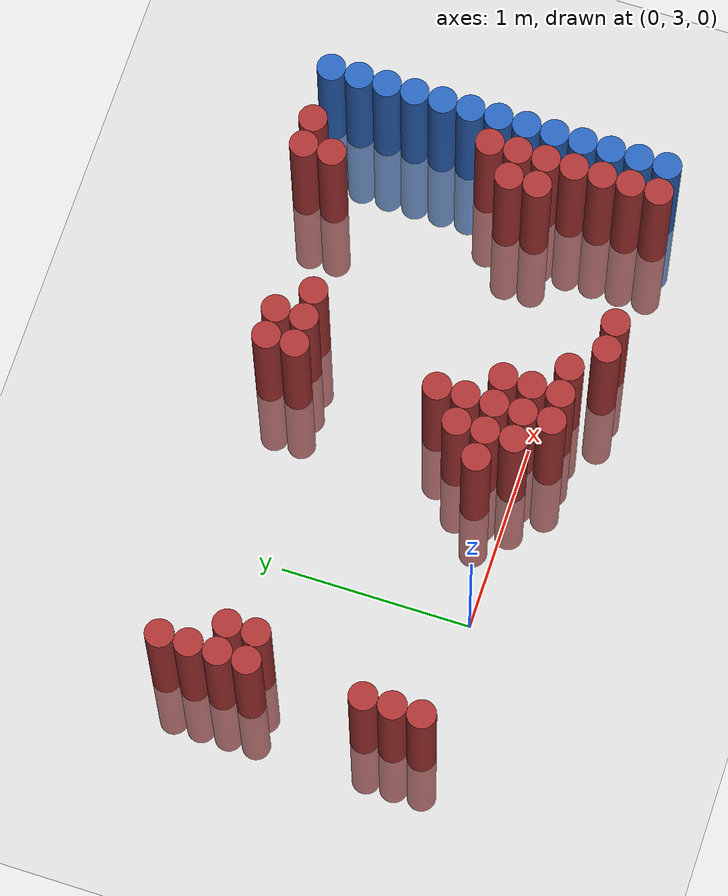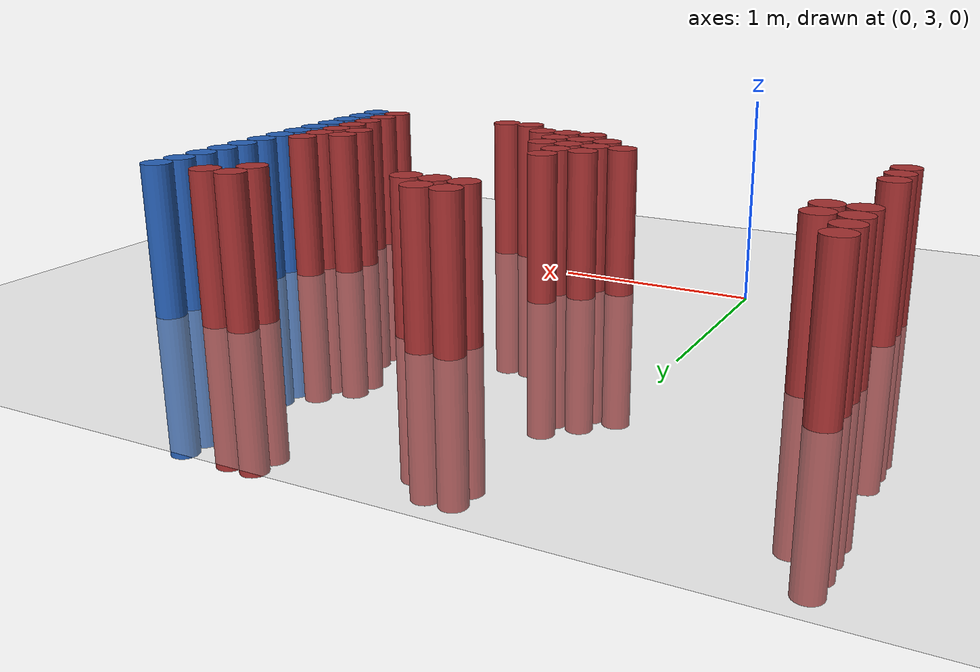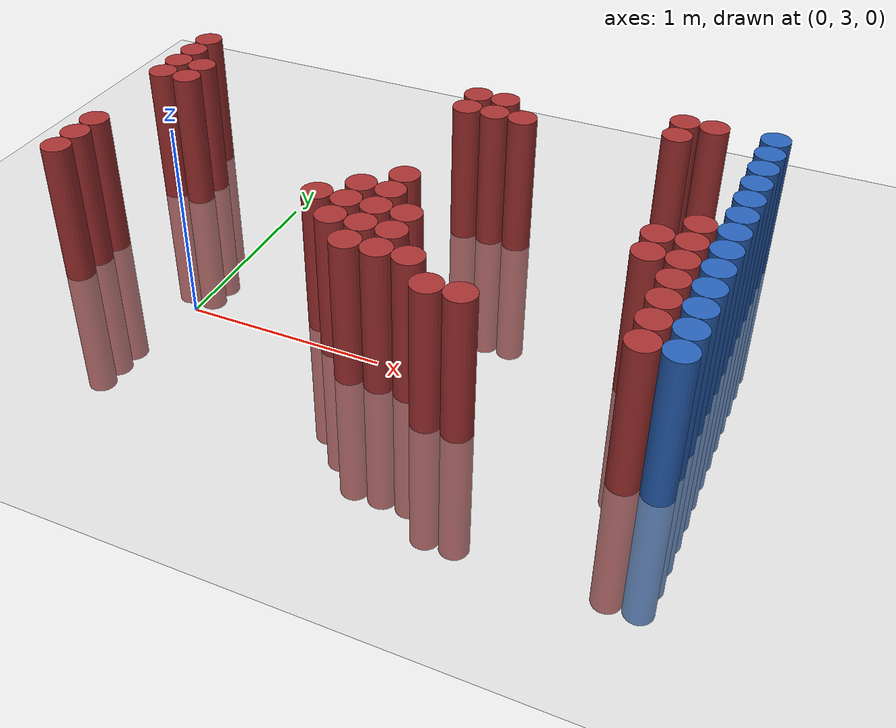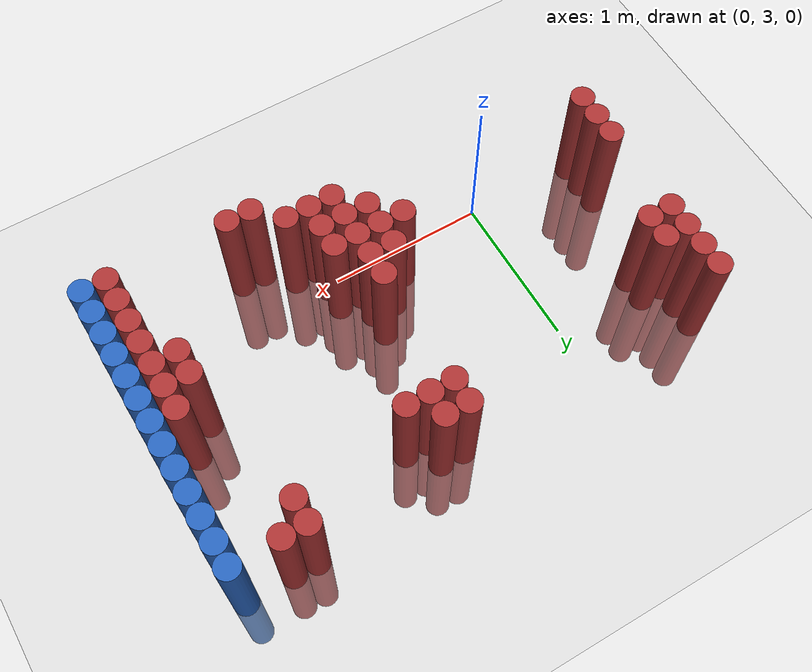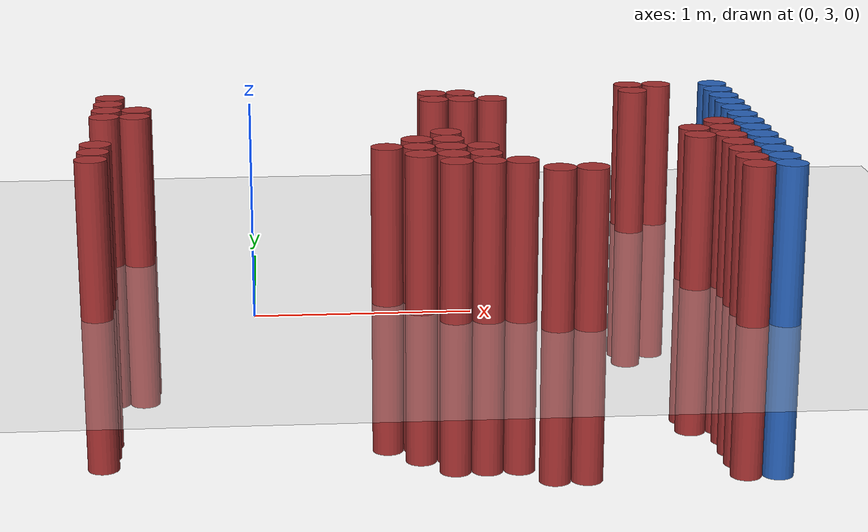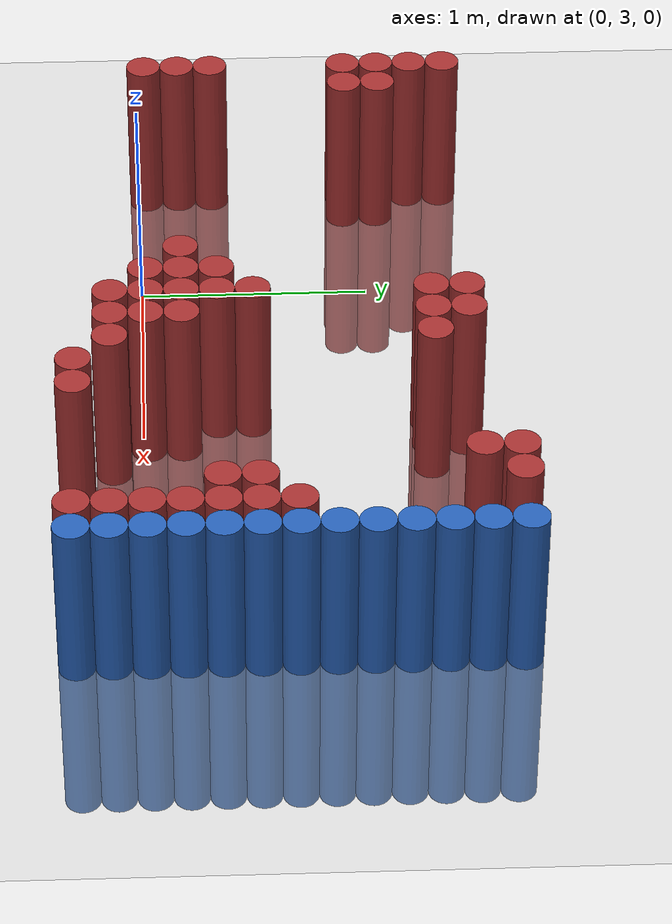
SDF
<sdf version="1.6">
 <world name="default">
  <model name="ground_plane">
   <static>1</static>
   <link name="link">
    <collision name="collision">
     <geometry><plane><normal>0 0 1</normal><size>100 100</size></plane></geometry>
     <surface><friction><ode><mu>100</mu><mu2>50</mu2></ode></friction></surface>
    </collision>
    <visual name="visual">
     <cast_shadows>0</cast_shadows>
     <geometry><plane><normal>0 0 1</normal><size>100 100</size></plane></geometry>
     <material>
      <script><uri>file://media/materials/scripts/gazebo.material</uri><name>Gazebo/Grey</name></script>
     </material>
    </visual>
   </link>
  </model>
  <model name="unit_cylinder_156">
   <static>1</static>
   <pose>-0.725000 3.025000 0.000000 0.000000 0.000000 0.000000</pose>
   <link name="link">
    <inertial>
     <mass>1</mass>
     <inertia><ixx>0.145833</ixx><ixy>0</ixy><ixz>0</ixz><iyy>0.145833</iyy><iyz>0</iyz><izz>0.125</izz></inertia>
    </inertial>
    <collision name="collision">
     <geometry><cylinder><radius>0.075000</radius><length>1.5</length></cylinder></geometry>
    </collision>
    <visual name="visual">
     <geometry><cylinder><radius>0.075000</radius><length>1.5</length></cylinder></geometry>
     <material>
      <ambient>0.648000 0.192000 0.192000 1</ambient>
      <diffuse>0.648000 0.192000 0.192000 1</diffuse>
     </material>
     <material>
      <script><name>Gazebo/Grey</name><uri>file://media/materials/scripts/gazebo.material</uri></script>
     </material>
    </visual>
   </link>
  </model>
  <model name="unit_cylinder_157">
   <static>1</static>
   <pose>-0.725000 3.175000 0.000000 0.000000 0.000000 0.000000</pose>
   <link name="link">
    <inertial>
     <mass>1</mass>
     <inertia><ixx>0.145833</ixx><ixy>0</ixy><ixz>0</ixz><iyy>0.145833</iyy><iyz>0</iyz><izz>0.125</izz></inertia>
    </inertial>
    <collision name="collision">
     <geometry><cylinder><radius>0.075000</radius><length>1.5</length></cylinder></geometry>
    </collision>
    <visual name="visual">
     <geometry><cylinder><radius>0.075000</radius><length>1.5</length></cylinder></geometry>
     <material>
      <ambient>0.648000 0.192000 0.192000 1</ambient>
      <diffuse>0.648000 0.192000 0.192000 1</diffuse>
     </material>
     <material>
      <script><name>Gazebo/Grey</name><uri>file://media/materials/scripts/gazebo.material</uri></script>
     </material>
    </visual>
   </link>
  </model>
  <model name="unit_cylinder_158">
   <static>1</static>
   <pose>-0.725000 3.325000 0.000000 0.000000 0.000000 0.000000</pose>
   <link name="link">
    <inertial>
     <mass>1</mass>
     <inertia><ixx>0.145833</ixx><ixy>0</ixy><ixz>0</ixz><iyy>0.145833</iyy><iyz>0</iyz><izz>0.125</izz></inertia>
    </inertial>
    <collision name="collision">
     <geometry><cylinder><radius>0.075000</radius><length>1.5</length></cylinder></geometry>
    </collision>
    <visual name="visual">
     <geometry><cylinder><radius>0.075000</radius><length>1.5</length></cylinder></geometry>
     <material>
      <ambient>0.648000 0.192000 0.192000 1</ambient>
      <diffuse>0.648000 0.192000 0.192000 1</diffuse>
     </material>
     <material>
      <script><name>Gazebo/Grey</name><uri>file://media/materials/scripts/gazebo.material</uri></script>
     </material>
    </visual>
   </link>
  </model>
  <model name="unit_cylinder_159">
   <static>1</static>
   <pose>-0.725000 3.925000 0.000000 0.000000 0.000000 0.000000</pose>
   <link name="link">
    <inertial>
     <mass>1</mass>
     <inertia><ixx>0.145833</ixx><ixy>0</ixy><ixz>0</ixz><iyy>0.145833</iyy><iyz>0</iyz><izz>0.125</izz></inertia>
    </inertial>
    <collision name="collision">
     <geometry><cylinder><radius>0.075000</radius><length>1.5</length></cylinder></geometry>
    </collision>
    <visual name="visual">
     <geometry><cylinder><radius>0.075000</radius><length>1.5</length></cylinder></geometry>
     <material>
      <ambient>0.648000 0.192000 0.192000 1</ambient>
      <diffuse>0.648000 0.192000 0.192000 1</diffuse>
     </material>
     <material>
      <script><name>Gazebo/Grey</name><uri>file://media/materials/scripts/gazebo.material</uri></script>
     </material>
    </visual>
   </link>
  </model>
  <model name="unit_cylinder_160">
   <static>1</static>
   <pose>-0.725000 4.075000 0.000000 0.000000 0.000000 0.000000</pose>
   <link name="link">
    <inertial>
     <mass>1</mass>
     <inertia><ixx>0.145833</ixx><ixy>0</ixy><ixz>0</ixz><iyy>0.145833</iyy><iyz>0</iyz><izz>0.125</izz></inertia>
    </inertial>
    <collision name="collision">
     <geometry><cylinder><radius>0.075000</radius><length>1.5</length></cylinder></geometry>
    </collision>
    <visual name="visual">
     <geometry><cylinder><radius>0.075000</radius><length>1.5</length></cylinder></geometry>
     <material>
      <ambient>0.648000 0.192000 0.192000 1</ambient>
      <diffuse>0.648000 0.192000 0.192000 1</diffuse>
     </material>
     <material>
      <script><name>Gazebo/Grey</name><uri>file://media/materials/scripts/gazebo.material</uri></script>
     </material>
    </visual>
   </link>
  </model>
  <model name="unit_cylinder_161">
   <static>1</static>
   <pose>-0.725000 4.225000 0.000000 0.000000 0.000000 0.000000</pose>
   <link name="link">
    <inertial>
     <mass>1</mass>
     <inertia><ixx>0.145833</ixx><ixy>0</ixy><ixz>0</ixz><iyy>0.145833</iyy><iyz>0</iyz><izz>0.125</izz></inertia>
    </inertial>
    <collision name="collision">
     <geometry><cylinder><radius>0.075000</radius><length>1.5</length></cylinder></geometry>
    </collision>
    <visual name="visual">
     <geometry><cylinder><radius>0.075000</radius><length>1.5</length></cylinder></geometry>
     <material>
      <ambient>0.648000 0.192000 0.192000 1</ambient>
      <diffuse>0.648000 0.192000 0.192000 1</diffuse>
     </material>
     <material>
      <script><name>Gazebo/Grey</name><uri>file://media/materials/scripts/gazebo.material</uri></script>
     </material>
    </visual>
   </link>
  </model>
  <model name="unit_cylinder_162">
   <static>1</static>
   <pose>-0.725000 4.375000 0.000000 0.000000 0.000000 0.000000</pose>
   <link name="link">
    <inertial>
     <mass>1</mass>
     <inertia><ixx>0.145833</ixx><ixy>0</ixy><ixz>0</ixz><iyy>0.145833</iyy><iyz>0</iyz><izz>0.125</izz></inertia>
    </inertial>
    <collision name="collision">
     <geometry><cylinder><radius>0.075000</radius><length>1.5</length></cylinder></geometry>
    </collision>
    <visual name="visual">
     <geometry><cylinder><radius>0.075000</radius><length>1.5</length></cylinder></geometry>
     <material>
      <ambient>0.648000 0.192000 0.192000 1</ambient>
      <diffuse>0.648000 0.192000 0.192000 1</diffuse>
     </material>
     <material>
      <script><name>Gazebo/Grey</name><uri>file://media/materials/scripts/gazebo.material</uri></script>
     </material>
    </visual>
   </link>
  </model>
  <model name="unit_cylinder_165">
   <static>1</static>
   <pose>-0.575000 3.925000 0.000000 0.000000 0.000000 0.000000</pose>
   <link name="link">
    <inertial>
     <mass>1</mass>
     <inertia><ixx>0.145833</ixx><ixy>0</ixy><ixz>0</ixz><iyy>0.145833</iyy><iyz>0</iyz><izz>0.125</izz></inertia>
    </inertial>
    <collision name="collision">
     <geometry><cylinder><radius>0.075000</radius><length>1.5</length></cylinder></geometry>
    </collision>
    <visual name="visual">
     <geometry><cylinder><radius>0.075000</radius><length>1.5</length></cylinder></geometry>
     <material>
      <ambient>0.648000 0.192000 0.192000 1</ambient>
      <diffuse>0.648000 0.192000 0.192000 1</diffuse>
     </material>
     <material>
      <script><name>Gazebo/Grey</name><uri>file://media/materials/scripts/gazebo.material</uri></script>
     </material>
    </visual>
   </link>
  </model>
  <model name="unit_cylinder_166">
   <static>1</static>
   <pose>-0.575000 4.075000 0.000000 0.000000 0.000000 0.000000</pose>
   <link name="link">
    <inertial>
     <mass>1</mass>
     <inertia><ixx>0.145833</ixx><ixy>0</ixy><ixz>0</ixz><iyy>0.145833</iyy><iyz>0</iyz><izz>0.125</izz></inertia>
    </inertial>
    <collision name="collision">
     <geometry><cylinder><radius>0.075000</radius><length>1.5</length></cylinder></geometry>
    </collision>
    <visual name="visual">
     <geometry><cylinder><radius>0.075000</radius><length>1.5</length></cylinder></geometry>
     <material>
      <ambient>0.648000 0.192000 0.192000 1</ambient>
      <diffuse>0.648000 0.192000 0.192000 1</diffuse>
     </material>
     <material>
      <script><name>Gazebo/Grey</name><uri>file://media/materials/scripts/gazebo.material</uri></script>
     </material>
    </visual>
   </link>
  </model>
  <model name="unit_cylinder_171">
   <static>1</static>
   <pose>0.625000 3.175000 0.000000 0.000000 0.000000 0.000000</pose>
   <link name="link">
    <inertial>
     <mass>1</mass>
     <inertia><ixx>0.145833</ixx><ixy>0</ixy><ixz>0</ixz><iyy>0.145833</iyy><iyz>0</iyz><izz>0.125</izz></inertia>
    </inertial>
    <collision name="collision">
     <geometry><cylinder><radius>0.075000</radius><length>1.5</length></cylinder></geometry>
    </collision>
    <visual name="visual">
     <geometry><cylinder><radius>0.075000</radius><length>1.5</length></cylinder></geometry>
     <material>
      <ambient>0.648000 0.192000 0.192000 1</ambient>
      <diffuse>0.648000 0.192000 0.192000 1</diffuse>
     </material>
     <material>
      <script><name>Gazebo/Grey</name><uri>file://media/materials/scripts/gazebo.material</uri></script>
     </material>
    </visual>
   </link>
  </model>
  <model name="unit_cylinder_174">
   <static>1</static>
   <pose>0.775000 3.025000 0.000000 0.000000 0.000000 0.000000</pose>
   <link name="link">
    <inertial>
     <mass>1</mass>
     <inertia><ixx>0.145833</ixx><ixy>0</ixy><ixz>0</ixz><iyy>0.145833</iyy><iyz>0</iyz><izz>0.125</izz></inertia>
    </inertial>
    <collision name="collision">
     <geometry><cylinder><radius>0.075000</radius><length>1.5</length></cylinder></geometry>
    </collision>
    <visual name="visual">
     <geometry><cylinder><radius>0.075000</radius><length>1.5</length></cylinder></geometry>
     <material>
      <ambient>0.648000 0.192000 0.192000 1</ambient>
      <diffuse>0.648000 0.192000 0.192000 1</diffuse>
     </material>
     <material>
      <script><name>Gazebo/Grey</name><uri>file://media/materials/scripts/gazebo.material</uri></script>
     </material>
    </visual>
   </link>
  </model>
  <model name="unit_cylinder_175">
   <static>1</static>
   <pose>0.775000 3.175000 0.000000 0.000000 0.000000 0.000000</pose>
   <link name="link">
    <inertial>
     <mass>1</mass>
     <inertia><ixx>0.145833</ixx><ixy>0</ixy><ixz>0</ixz><iyy>0.145833</iyy><iyz>0</iyz><izz>0.125</izz></inertia>
    </inertial>
    <collision name="collision">
     <geometry><cylinder><radius>0.075000</radius><length>1.5</length></cylinder></geometry>
    </collision>
    <visual name="visual">
     <geometry><cylinder><radius>0.075000</radius><length>1.5</length></cylinder></geometry>
     <material>
      <ambient>0.648000 0.192000 0.192000 1</ambient>
      <diffuse>0.648000 0.192000 0.192000 1</diffuse>
     </material>
     <material>
      <script><name>Gazebo/Grey</name><uri>file://media/materials/scripts/gazebo.material</uri></script>
     </material>
    </visual>
   </link>
  </model>
  <model name="unit_cylinder_176">
   <static>1</static>
   <pose>0.775000 3.325000 0.000000 0.000000 0.000000 0.000000</pose>
   <link name="link">
    <inertial>
     <mass>1</mass>
     <inertia><ixx>0.145833</ixx><ixy>0</ixy><ixz>0</ixz><iyy>0.145833</iyy><iyz>0</iyz><izz>0.125</izz></inertia>
    </inertial>
    <collision name="collision">
     <geometry><cylinder><radius>0.075000</radius><length>1.5</length></cylinder></geometry>
    </collision>
    <visual name="visual">
     <geometry><cylinder><radius>0.075000</radius><length>1.5</length></cylinder></geometry>
     <material>
      <ambient>0.648000 0.192000 0.192000 1</ambient>
      <diffuse>0.648000 0.192000 0.192000 1</diffuse>
     </material>
     <material>
      <script><name>Gazebo/Grey</name><uri>file://media/materials/scripts/gazebo.material</uri></script>
     </material>
    </visual>
   </link>
  </model>
  <model name="unit_cylinder_179">
   <static>1</static>
   <pose>0.925000 2.875000 0.000000 0.000000 0.000000 0.000000</pose>
   <link name="link">
    <inertial>
     <mass>1</mass>
     <inertia><ixx>0.145833</ixx><ixy>0</ixy><ixz>0</ixz><iyy>0.145833</iyy><iyz>0</iyz><izz>0.125</izz></inertia>
    </inertial>
    <collision name="collision">
     <geometry><cylinder><radius>0.075000</radius><length>1.5</length></cylinder></geometry>
    </collision>
    <visual name="visual">
     <geometry><cylinder><radius>0.075000</radius><length>1.5</length></cylinder></geometry>
     <material>
      <ambient>0.648000 0.192000 0.192000 1</ambient>
      <diffuse>0.648000 0.192000 0.192000 1</diffuse>
     </material>
     <material>
      <script><name>Gazebo/Grey</name><uri>file://media/materials/scripts/gazebo.material</uri></script>
     </material>
    </visual>
   </link>
  </model>
  <model name="unit_cylinder_180">
   <static>1</static>
   <pose>0.925000 3.025000 0.000000 0.000000 0.000000 0.000000</pose>
   <link name="link">
    <inertial>
     <mass>1</mass>
     <inertia><ixx>0.145833</ixx><ixy>0</ixy><ixz>0</ixz><iyy>0.145833</iyy><iyz>0</iyz><izz>0.125</izz></inertia>
    </inertial>
    <collision name="collision">
     <geometry><cylinder><radius>0.075000</radius><length>1.5</length></cylinder></geometry>
    </collision>
    <visual name="visual">
     <geometry><cylinder><radius>0.075000</radius><length>1.5</length></cylinder></geometry>
     <material>
      <ambient>0.648000 0.192000 0.192000 1</ambient>
      <diffuse>0.648000 0.192000 0.192000 1</diffuse>
     </material>
     <material>
      <script><name>Gazebo/Grey</name><uri>file://media/materials/scripts/gazebo.material</uri></script>
     </material>
    </visual>
   </link>
  </model>
  <model name="unit_cylinder_181">
   <static>1</static>
   <pose>0.925000 3.175000 0.000000 0.000000 0.000000 0.000000</pose>
   <link name="link">
    <inertial>
     <mass>1</mass>
     <inertia><ixx>0.145833</ixx><ixy>0</ixy><ixz>0</ixz><iyy>0.145833</iyy><iyz>0</iyz><izz>0.125</izz></inertia>
    </inertial>
    <collision name="collision">
     <geometry><cylinder><radius>0.075000</radius><length>1.5</length></cylinder></geometry>
    </collision>
    <visual name="visual">
     <geometry><cylinder><radius>0.075000</radius><length>1.5</length></cylinder></geometry>
     <material>
      <ambient>0.648000 0.192000 0.192000 1</ambient>
      <diffuse>0.648000 0.192000 0.192000 1</diffuse>
     </material>
     <material>
      <script><name>Gazebo/Grey</name><uri>file://media/materials/scripts/gazebo.material</uri></script>
     </material>
    </visual>
   </link>
  </model>
  <model name="unit_cylinder_182">
   <static>1</static>
   <pose>0.925000 3.325000 0.000000 0.000000 0.000000 0.000000</pose>
   <link name="link">
    <inertial>
     <mass>1</mass>
     <inertia><ixx>0.145833</ixx><ixy>0</ixy><ixz>0</ixz><iyy>0.145833</iyy><iyz>0</iyz><izz>0.125</izz></inertia>
    </inertial>
    <collision name="collision">
     <geometry><cylinder><radius>0.075000</radius><length>1.5</length></cylinder></geometry>
    </collision>
    <visual name="visual">
     <geometry><cylinder><radius>0.075000</radius><length>1.5</length></cylinder></geometry>
     <material>
      <ambient>0.648000 0.192000 0.192000 1</ambient>
      <diffuse>0.648000 0.192000 0.192000 1</diffuse>
     </material>
     <material>
      <script><name>Gazebo/Grey</name><uri>file://media/materials/scripts/gazebo.material</uri></script>
     </material>
    </visual>
   </link>
  </model>
  <model name="unit_cylinder_183">
   <static>1</static>
   <pose>0.925000 3.475000 0.000000 0.000000 0.000000 0.000000</pose>
   <link name="link">
    <inertial>
     <mass>1</mass>
     <inertia><ixx>0.145833</ixx><ixy>0</ixy><ixz>0</ixz><iyy>0.145833</iyy><iyz>0</iyz><izz>0.125</izz></inertia>
    </inertial>
    <collision name="collision">
     <geometry><cylinder><radius>0.075000</radius><length>1.5</length></cylinder></geometry>
    </collision>
    <visual name="visual">
     <geometry><cylinder><radius>0.075000</radius><length>1.5</length></cylinder></geometry>
     <material>
      <ambient>0.648000 0.192000 0.192000 1</ambient>
      <diffuse>0.648000 0.192000 0.192000 1</diffuse>
     </material>
     <material>
      <script><name>Gazebo/Grey</name><uri>file://media/materials/scripts/gazebo.material</uri></script>
     </material>
    </visual>
   </link>
  </model>
  <model name="unit_cylinder_184">
   <static>1</static>
   <pose>0.925000 4.225000 0.000000 0.000000 0.000000 0.000000</pose>
   <link name="link">
    <inertial>
     <mass>1</mass>
     <inertia><ixx>0.145833</ixx><ixy>0</ixy><ixz>0</ixz><iyy>0.145833</iyy><iyz>0</iyz><izz>0.125</izz></inertia>
    </inertial>
    <collision name="collision">
     <geometry><cylinder><radius>0.075000</radius><length>1.5</length></cylinder></geometry>
    </collision>
    <visual name="visual">
     <geometry><cylinder><radius>0.075000</radius><length>1.5</length></cylinder></geometry>
     <material>
      <ambient>0.648000 0.192000 0.192000 1</ambient>
      <diffuse>0.648000 0.192000 0.192000 1</diffuse>
     </material>
     <material>
      <script><name>Gazebo/Grey</name><uri>file://media/materials/scripts/gazebo.material</uri></script>
     </material>
    </visual>
   </link>
  </model>
  <model name="unit_cylinder_185">
   <static>1</static>
   <pose>0.925000 4.375000 0.000000 0.000000 0.000000 0.000000</pose>
   <link name="link">
    <inertial>
     <mass>1</mass>
     <inertia><ixx>0.145833</ixx><ixy>0</ixy><ixz>0</ixz><iyy>0.145833</iyy><iyz>0</iyz><izz>0.125</izz></inertia>
    </inertial>
    <collision name="collision">
     <geometry><cylinder><radius>0.075000</radius><length>1.5</length></cylinder></geometry>
    </collision>
    <visual name="visual">
     <geometry><cylinder><radius>0.075000</radius><length>1.5</length></cylinder></geometry>
     <material>
      <ambient>0.648000 0.192000 0.192000 1</ambient>
      <diffuse>0.648000 0.192000 0.192000 1</diffuse>
     </material>
     <material>
      <script><name>Gazebo/Grey</name><uri>file://media/materials/scripts/gazebo.material</uri></script>
     </material>
    </visual>
   </link>
  </model>
  <model name="unit_cylinder_190">
   <static>1</static>
   <pose>1.075000 2.875000 0.000000 0.000000 0.000000 0.000000</pose>
   <link name="link">
    <inertial>
     <mass>1</mass>
     <inertia><ixx>0.145833</ixx><ixy>0</ixy><ixz>0</ixz><iyy>0.145833</iyy><iyz>0</iyz><izz>0.125</izz></inertia>
    </inertial>
    <collision name="collision">
     <geometry><cylinder><radius>0.075000</radius><length>1.5</length></cylinder></geometry>
    </collision>
    <visual name="visual">
     <geometry><cylinder><radius>0.075000</radius><length>1.5</length></cylinder></geometry>
     <material>
      <ambient>0.648000 0.192000 0.192000 1</ambient>
      <diffuse>0.648000 0.192000 0.192000 1</diffuse>
     </material>
     <material>
      <script><name>Gazebo/Grey</name><uri>file://media/materials/scripts/gazebo.material</uri></script>
     </material>
    </visual>
   </link>
  </model>
  <model name="unit_cylinder_191">
   <static>1</static>
   <pose>1.075000 3.025000 0.000000 0.000000 0.000000 0.000000</pose>
   <link name="link">
    <inertial>
     <mass>1</mass>
     <inertia><ixx>0.145833</ixx><ixy>0</ixy><ixz>0</ixz><iyy>0.145833</iyy><iyz>0</iyz><izz>0.125</izz></inertia>
    </inertial>
    <collision name="collision">
     <geometry><cylinder><radius>0.075000</radius><length>1.5</length></cylinder></geometry>
    </collision>
    <visual name="visual">
     <geometry><cylinder><radius>0.075000</radius><length>1.5</length></cylinder></geometry>
     <material>
      <ambient>0.648000 0.192000 0.192000 1</ambient>
      <diffuse>0.648000 0.192000 0.192000 1</diffuse>
     </material>
     <material>
      <script><name>Gazebo/Grey</name><uri>file://media/materials/scripts/gazebo.material</uri></script>
     </material>
    </visual>
   </link>
  </model>
  <model name="unit_cylinder_192">
   <static>1</static>
   <pose>1.075000 3.175000 0.000000 0.000000 0.000000 0.000000</pose>
   <link name="link">
    <inertial>
     <mass>1</mass>
     <inertia><ixx>0.145833</ixx><ixy>0</ixy><ixz>0</ixz><iyy>0.145833</iyy><iyz>0</iyz><izz>0.125</izz></inertia>
    </inertial>
    <collision name="collision">
     <geometry><cylinder><radius>0.075000</radius><length>1.5</length></cylinder></geometry>
    </collision>
    <visual name="visual">
     <geometry><cylinder><radius>0.075000</radius><length>1.5</length></cylinder></geometry>
     <material>
      <ambient>0.648000 0.192000 0.192000 1</ambient>
      <diffuse>0.648000 0.192000 0.192000 1</diffuse>
     </material>
     <material>
      <script><name>Gazebo/Grey</name><uri>file://media/materials/scripts/gazebo.material</uri></script>
     </material>
    </visual>
   </link>
  </model>
  <model name="unit_cylinder_193">
   <static>1</static>
   <pose>1.075000 4.225000 0.000000 0.000000 0.000000 0.000000</pose>
   <link name="link">
    <inertial>
     <mass>1</mass>
     <inertia><ixx>0.145833</ixx><ixy>0</ixy><ixz>0</ixz><iyy>0.145833</iyy><iyz>0</iyz><izz>0.125</izz></inertia>
    </inertial>
    <collision name="collision">
     <geometry><cylinder><radius>0.075000</radius><length>1.5</length></cylinder></geometry>
    </collision>
    <visual name="visual">
     <geometry><cylinder><radius>0.075000</radius><length>1.5</length></cylinder></geometry>
     <material>
      <ambient>0.648000 0.192000 0.192000 1</ambient>
      <diffuse>0.648000 0.192000 0.192000 1</diffuse>
     </material>
     <material>
      <script><name>Gazebo/Grey</name><uri>file://media/materials/scripts/gazebo.material</uri></script>
     </material>
    </visual>
   </link>
  </model>
  <model name="unit_cylinder_194">
   <static>1</static>
   <pose>1.075000 4.375000 0.000000 0.000000 0.000000 0.000000</pose>
   <link name="link">
    <inertial>
     <mass>1</mass>
     <inertia><ixx>0.145833</ixx><ixy>0</ixy><ixz>0</ixz><iyy>0.145833</iyy><iyz>0</iyz><izz>0.125</izz></inertia>
    </inertial>
    <collision name="collision">
     <geometry><cylinder><radius>0.075000</radius><length>1.5</length></cylinder></geometry>
    </collision>
    <visual name="visual">
     <geometry><cylinder><radius>0.075000</radius><length>1.5</length></cylinder></geometry>
     <material>
      <ambient>0.648000 0.192000 0.192000 1</ambient>
      <diffuse>0.648000 0.192000 0.192000 1</diffuse>
     </material>
     <material>
      <script><name>Gazebo/Grey</name><uri>file://media/materials/scripts/gazebo.material</uri></script>
     </material>
    </visual>
   </link>
  </model>
  <model name="unit_cylinder_199">
   <static>1</static>
   <pose>1.225000 2.875000 0.000000 0.000000 0.000000 0.000000</pose>
   <link name="link">
    <inertial>
     <mass>1</mass>
     <inertia><ixx>0.145833</ixx><ixy>0</ixy><ixz>0</ixz><iyy>0.145833</iyy><iyz>0</iyz><izz>0.125</izz></inertia>
    </inertial>
    <collision name="collision">
     <geometry><cylinder><radius>0.075000</radius><length>1.5</length></cylinder></geometry>
    </collision>
    <visual name="visual">
     <geometry><cylinder><radius>0.075000</radius><length>1.5</length></cylinder></geometry>
     <material>
      <ambient>0.648000 0.192000 0.192000 1</ambient>
      <diffuse>0.648000 0.192000 0.192000 1</diffuse>
     </material>
     <material>
      <script><name>Gazebo/Grey</name><uri>file://media/materials/scripts/gazebo.material</uri></script>
     </material>
    </visual>
   </link>
  </model>
  <model name="unit_cylinder_200">
   <static>1</static>
   <pose>1.225000 4.225000 0.000000 0.000000 0.000000 0.000000</pose>
   <link name="link">
    <inertial>
     <mass>1</mass>
     <inertia><ixx>0.145833</ixx><ixy>0</ixy><ixz>0</ixz><iyy>0.145833</iyy><iyz>0</iyz><izz>0.125</izz></inertia>
    </inertial>
    <collision name="collision">
     <geometry><cylinder><radius>0.075000</radius><length>1.5</length></cylinder></geometry>
    </collision>
    <visual name="visual">
     <geometry><cylinder><radius>0.075000</radius><length>1.5</length></cylinder></geometry>
     <material>
      <ambient>0.648000 0.192000 0.192000 1</ambient>
      <diffuse>0.648000 0.192000 0.192000 1</diffuse>
     </material>
     <material>
      <script><name>Gazebo/Grey</name><uri>file://media/materials/scripts/gazebo.material</uri></script>
     </material>
    </visual>
   </link>
  </model>
  <model name="unit_cylinder_205">
   <static>1</static>
   <pose>1.375000 2.725000 0.000000 0.000000 0.000000 0.000000</pose>
   <link name="link">
    <inertial>
     <mass>1</mass>
     <inertia><ixx>0.145833</ixx><ixy>0</ixy><ixz>0</ixz><iyy>0.145833</iyy><iyz>0</iyz><izz>0.125</izz></inertia>
    </inertial>
    <collision name="collision">
     <geometry><cylinder><radius>0.075000</radius><length>1.5</length></cylinder></geometry>
    </collision>
    <visual name="visual">
     <geometry><cylinder><radius>0.075000</radius><length>1.5</length></cylinder></geometry>
     <material>
      <ambient>0.648000 0.192000 0.192000 1</ambient>
      <diffuse>0.648000 0.192000 0.192000 1</diffuse>
     </material>
     <material>
      <script><name>Gazebo/Grey</name><uri>file://media/materials/scripts/gazebo.material</uri></script>
     </material>
    </visual>
   </link>
  </model>
  <model name="unit_cylinder_211">
   <static>1</static>
   <pose>1.525000 2.725000 0.000000 0.000000 0.000000 0.000000</pose>
   <link name="link">
    <inertial>
     <mass>1</mass>
     <inertia><ixx>0.145833</ixx><ixy>0</ixy><ixz>0</ixz><iyy>0.145833</iyy><iyz>0</iyz><izz>0.125</izz></inertia>
    </inertial>
    <collision name="collision">
     <geometry><cylinder><radius>0.075000</radius><length>1.5</length></cylinder></geometry>
    </collision>
    <visual name="visual">
     <geometry><cylinder><radius>0.075000</radius><length>1.5</length></cylinder></geometry>
     <material>
      <ambient>0.648000 0.192000 0.192000 1</ambient>
      <diffuse>0.648000 0.192000 0.192000 1</diffuse>
     </material>
     <material>
      <script><name>Gazebo/Grey</name><uri>file://media/materials/scripts/gazebo.material</uri></script>
     </material>
    </visual>
   </link>
  </model>
  <model name="unit_cylinder_222">
   <static>1</static>
   <pose>1.975000 4.375000 0.000000 0.000000 0.000000 0.000000</pose>
   <link name="link">
    <inertial>
     <mass>1</mass>
     <inertia><ixx>0.145833</ixx><ixy>0</ixy><ixz>0</ixz><iyy>0.145833</iyy><iyz>0</iyz><izz>0.125</izz></inertia>
    </inertial>
    <collision name="collision">
     <geometry><cylinder><radius>0.075000</radius><length>1.5</length></cylinder></geometry>
    </collision>
    <visual name="visual">
     <geometry><cylinder><radius>0.075000</radius><length>1.5</length></cylinder></geometry>
     <material>
      <ambient>0.648000 0.192000 0.192000 1</ambient>
      <diffuse>0.648000 0.192000 0.192000 1</diffuse>
     </material>
     <material>
      <script><name>Gazebo/Grey</name><uri>file://media/materials/scripts/gazebo.material</uri></script>
     </material>
    </visual>
   </link>
  </model>
  <model name="unit_cylinder_223">
   <static>1</static>
   <pose>1.975000 4.525000 0.000000 0.000000 0.000000 0.000000</pose>
   <link name="link">
    <inertial>
     <mass>1</mass>
     <inertia><ixx>0.145833</ixx><ixy>0</ixy><ixz>0</ixz><iyy>0.145833</iyy><iyz>0</iyz><izz>0.125</izz></inertia>
    </inertial>
    <collision name="collision">
     <geometry><cylinder><radius>0.075000</radius><length>1.5</length></cylinder></geometry>
    </collision>
    <visual name="visual">
     <geometry><cylinder><radius>0.075000</radius><length>1.5</length></cylinder></geometry>
     <material>
      <ambient>0.648000 0.192000 0.192000 1</ambient>
      <diffuse>0.648000 0.192000 0.192000 1</diffuse>
     </material>
     <material>
      <script><name>Gazebo/Grey</name><uri>file://media/materials/scripts/gazebo.material</uri></script>
     </material>
    </visual>
   </link>
  </model>
  <model name="unit_cylinder_225">
   <static>1</static>
   <pose>2.125000 3.325000 0.000000 0.000000 0.000000 0.000000</pose>
   <link name="link">
    <inertial>
     <mass>1</mass>
     <inertia><ixx>0.145833</ixx><ixy>0</ixy><ixz>0</ixz><iyy>0.145833</iyy><iyz>0</iyz><izz>0.125</izz></inertia>
    </inertial>
    <collision name="collision">
     <geometry><cylinder><radius>0.075000</radius><length>1.5</length></cylinder></geometry>
    </collision>
    <visual name="visual">
     <geometry><cylinder><radius>0.075000</radius><length>1.5</length></cylinder></geometry>
     <material>
      <ambient>0.648000 0.192000 0.192000 1</ambient>
      <diffuse>0.648000 0.192000 0.192000 1</diffuse>
     </material>
     <material>
      <script><name>Gazebo/Grey</name><uri>file://media/materials/scripts/gazebo.material</uri></script>
     </material>
    </visual>
   </link>
  </model>
  <model name="unit_cylinder_226">
   <static>1</static>
   <pose>2.125000 3.475000 0.000000 0.000000 0.000000 0.000000</pose>
   <link name="link">
    <inertial>
     <mass>1</mass>
     <inertia><ixx>0.145833</ixx><ixy>0</ixy><ixz>0</ixz><iyy>0.145833</iyy><iyz>0</iyz><izz>0.125</izz></inertia>
    </inertial>
    <collision name="collision">
     <geometry><cylinder><radius>0.075000</radius><length>1.5</length></cylinder></geometry>
    </collision>
    <visual name="visual">
     <geometry><cylinder><radius>0.075000</radius><length>1.5</length></cylinder></geometry>
     <material>
      <ambient>0.648000 0.192000 0.192000 1</ambient>
      <diffuse>0.648000 0.192000 0.192000 1</diffuse>
     </material>
     <material>
      <script><name>Gazebo/Grey</name><uri>file://media/materials/scripts/gazebo.material</uri></script>
     </material>
    </visual>
   </link>
  </model>
  <model name="unit_cylinder_227">
   <static>1</static>
   <pose>2.125000 4.525000 0.000000 0.000000 0.000000 0.000000</pose>
   <link name="link">
    <inertial>
     <mass>1</mass>
     <inertia><ixx>0.145833</ixx><ixy>0</ixy><ixz>0</ixz><iyy>0.145833</iyy><iyz>0</iyz><izz>0.125</izz></inertia>
    </inertial>
    <collision name="collision">
     <geometry><cylinder><radius>0.075000</radius><length>1.5</length></cylinder></geometry>
    </collision>
    <visual name="visual">
     <geometry><cylinder><radius>0.075000</radius><length>1.5</length></cylinder></geometry>
     <material>
      <ambient>0.648000 0.192000 0.192000 1</ambient>
      <diffuse>0.648000 0.192000 0.192000 1</diffuse>
     </material>
     <material>
      <script><name>Gazebo/Grey</name><uri>file://media/materials/scripts/gazebo.material</uri></script>
     </material>
    </visual>
   </link>
  </model>
  <model name="unit_cylinder_235">
   <static>1</static>
   <pose>2.275000 2.725000 0.000000 0.000000 0.000000 0.000000</pose>
   <link name="link">
    <inertial>
     <mass>1</mass>
     <inertia><ixx>0.145833</ixx><ixy>0</ixy><ixz>0</ixz><iyy>0.145833</iyy><iyz>0</iyz><izz>0.125</izz></inertia>
    </inertial>
    <collision name="collision">
     <geometry><cylinder><radius>0.075000</radius><length>1.5</length></cylinder></geometry>
    </collision>
    <visual name="visual">
     <geometry><cylinder><radius>0.075000</radius><length>1.5</length></cylinder></geometry>
     <material>
      <ambient>0.648000 0.192000 0.192000 1</ambient>
      <diffuse>0.648000 0.192000 0.192000 1</diffuse>
     </material>
     <material>
      <script><name>Gazebo/Grey</name><uri>file://media/materials/scripts/gazebo.material</uri></script>
     </material>
    </visual>
   </link>
  </model>
  <model name="unit_cylinder_236">
   <static>1</static>
   <pose>2.275000 2.875000 0.000000 0.000000 0.000000 0.000000</pose>
   <link name="link">
    <inertial>
     <mass>1</mass>
     <inertia><ixx>0.145833</ixx><ixy>0</ixy><ixz>0</ixz><iyy>0.145833</iyy><iyz>0</iyz><izz>0.125</izz></inertia>
    </inertial>
    <collision name="collision">
     <geometry><cylinder><radius>0.075000</radius><length>1.5</length></cylinder></geometry>
    </collision>
    <visual name="visual">
     <geometry><cylinder><radius>0.075000</radius><length>1.5</length></cylinder></geometry>
     <material>
      <ambient>0.648000 0.192000 0.192000 1</ambient>
      <diffuse>0.648000 0.192000 0.192000 1</diffuse>
     </material>
     <material>
      <script><name>Gazebo/Grey</name><uri>file://media/materials/scripts/gazebo.material</uri></script>
     </material>
    </visual>
   </link>
  </model>
  <model name="unit_cylinder_237">
   <static>1</static>
   <pose>2.275000 3.025000 0.000000 0.000000 0.000000 0.000000</pose>
   <link name="link">
    <inertial>
     <mass>1</mass>
     <inertia><ixx>0.145833</ixx><ixy>0</ixy><ixz>0</ixz><iyy>0.145833</iyy><iyz>0</iyz><izz>0.125</izz></inertia>
    </inertial>
    <collision name="collision">
     <geometry><cylinder><radius>0.075000</radius><length>1.5</length></cylinder></geometry>
    </collision>
    <visual name="visual">
     <geometry><cylinder><radius>0.075000</radius><length>1.5</length></cylinder></geometry>
     <material>
      <ambient>0.648000 0.192000 0.192000 1</ambient>
      <diffuse>0.648000 0.192000 0.192000 1</diffuse>
     </material>
     <material>
      <script><name>Gazebo/Grey</name><uri>file://media/materials/scripts/gazebo.material</uri></script>
     </material>
    </visual>
   </link>
  </model>
  <model name="unit_cylinder_238">
   <static>1</static>
   <pose>2.275000 3.175000 0.000000 0.000000 0.000000 0.000000</pose>
   <link name="link">
    <inertial>
     <mass>1</mass>
     <inertia><ixx>0.145833</ixx><ixy>0</ixy><ixz>0</ixz><iyy>0.145833</iyy><iyz>0</iyz><izz>0.125</izz></inertia>
    </inertial>
    <collision name="collision">
     <geometry><cylinder><radius>0.075000</radius><length>1.5</length></cylinder></geometry>
    </collision>
    <visual name="visual">
     <geometry><cylinder><radius>0.075000</radius><length>1.5</length></cylinder></geometry>
     <material>
      <ambient>0.648000 0.192000 0.192000 1</ambient>
      <diffuse>0.648000 0.192000 0.192000 1</diffuse>
     </material>
     <material>
      <script><name>Gazebo/Grey</name><uri>file://media/materials/scripts/gazebo.material</uri></script>
     </material>
    </visual>
   </link>
  </model>
  <model name="unit_cylinder_239">
   <static>1</static>
   <pose>2.275000 3.325000 0.000000 0.000000 0.000000 0.000000</pose>
   <link name="link">
    <inertial>
     <mass>1</mass>
     <inertia><ixx>0.145833</ixx><ixy>0</ixy><ixz>0</ixz><iyy>0.145833</iyy><iyz>0</iyz><izz>0.125</izz></inertia>
    </inertial>
    <collision name="collision">
     <geometry><cylinder><radius>0.075000</radius><length>1.5</length></cylinder></geometry>
    </collision>
    <visual name="visual">
     <geometry><cylinder><radius>0.075000</radius><length>1.5</length></cylinder></geometry>
     <material>
      <ambient>0.648000 0.192000 0.192000 1</ambient>
      <diffuse>0.648000 0.192000 0.192000 1</diffuse>
     </material>
     <material>
      <script><name>Gazebo/Grey</name><uri>file://media/materials/scripts/gazebo.material</uri></script>
     </material>
    </visual>
   </link>
  </model>
  <model name="unit_cylinder_240">
   <static>1</static>
   <pose>2.275000 3.475000 0.000000 0.000000 0.000000 0.000000</pose>
   <link name="link">
    <inertial>
     <mass>1</mass>
     <inertia><ixx>0.145833</ixx><ixy>0</ixy><ixz>0</ixz><iyy>0.145833</iyy><iyz>0</iyz><izz>0.125</izz></inertia>
    </inertial>
    <collision name="collision">
     <geometry><cylinder><radius>0.075000</radius><length>1.5</length></cylinder></geometry>
    </collision>
    <visual name="visual">
     <geometry><cylinder><radius>0.075000</radius><length>1.5</length></cylinder></geometry>
     <material>
      <ambient>0.648000 0.192000 0.192000 1</ambient>
      <diffuse>0.648000 0.192000 0.192000 1</diffuse>
     </material>
     <material>
      <script><name>Gazebo/Grey</name><uri>file://media/materials/scripts/gazebo.material</uri></script>
     </material>
    </visual>
   </link>
  </model>
  <model name="unit_cylinder_241">
   <static>1</static>
   <pose>2.275000 3.625000 0.000000 0.000000 0.000000 0.000000</pose>
   <link name="link">
    <inertial>
     <mass>1</mass>
     <inertia><ixx>0.145833</ixx><ixy>0</ixy><ixz>0</ixz><iyy>0.145833</iyy><iyz>0</iyz><izz>0.125</izz></inertia>
    </inertial>
    <collision name="collision">
     <geometry><cylinder><radius>0.075000</radius><length>1.5</length></cylinder></geometry>
    </collision>
    <visual name="visual">
     <geometry><cylinder><radius>0.075000</radius><length>1.5</length></cylinder></geometry>
     <material>
      <ambient>0.648000 0.192000 0.192000 1</ambient>
      <diffuse>0.648000 0.192000 0.192000 1</diffuse>
     </material>
     <material>
      <script><name>Gazebo/Grey</name><uri>file://media/materials/scripts/gazebo.material</uri></script>
     </material>
    </visual>
   </link>
  </model>
  <model name="unit_cylinder_259">
   <static>1</static>
   <pose>2.425000 2.725000 0.000000 0.000000 0.000000 0.000000</pose>
   <link name="link">
    <inertial>
     <mass>1</mass>
     <inertia><ixx>0.145833</ixx><ixy>0</ixy><ixz>0</ixz><iyy>0.145833</iyy><iyz>0</iyz><izz>0.125</izz></inertia>
    </inertial>
    <collision name="collision">
     <geometry><cylinder><radius>0.075000</radius><length>1.5</length></cylinder></geometry>
    </collision>
    <visual name="visual">
     <geometry><cylinder><radius>0.075000</radius><length>1.5</length></cylinder></geometry>
     <material>
      <ambient>0.152000 0.379000 0.720000 1</ambient>
      <diffuse>0.152000 0.379000 0.720000 1</diffuse>
     </material>
     <material>
      <script><name>Gazebo/Grey</name><uri>file://media/materials/scripts/gazebo.material</uri></script>
     </material>
    </visual>
   </link>
  </model>
  <model name="unit_cylinder_260">
   <static>1</static>
   <pose>2.425000 2.875000 0.000000 0.000000 0.000000 0.000000</pose>
   <link name="link">
    <inertial>
     <mass>1</mass>
     <inertia><ixx>0.145833</ixx><ixy>0</ixy><ixz>0</ixz><iyy>0.145833</iyy><iyz>0</iyz><izz>0.125</izz></inertia>
    </inertial>
    <collision name="collision">
     <geometry><cylinder><radius>0.075000</radius><length>1.5</length></cylinder></geometry>
    </collision>
    <visual name="visual">
     <geometry><cylinder><radius>0.075000</radius><length>1.5</length></cylinder></geometry>
     <material>
      <ambient>0.152000 0.379000 0.720000 1</ambient>
      <diffuse>0.152000 0.379000 0.720000 1</diffuse>
     </material>
     <material>
      <script><name>Gazebo/Grey</name><uri>file://media/materials/scripts/gazebo.material</uri></script>
     </material>
    </visual>
   </link>
  </model>
  <model name="unit_cylinder_261">
   <static>1</static>
   <pose>2.425000 3.025000 0.000000 0.000000 0.000000 0.000000</pose>
   <link name="link">
    <inertial>
     <mass>1</mass>
     <inertia><ixx>0.145833</ixx><ixy>0</ixy><ixz>0</ixz><iyy>0.145833</iyy><iyz>0</iyz><izz>0.125</izz></inertia>
    </inertial>
    <collision name="collision">
     <geometry><cylinder><radius>0.075000</radius><length>1.5</length></cylinder></geometry>
    </collision>
    <visual name="visual">
     <geometry><cylinder><radius>0.075000</radius><length>1.5</length></cylinder></geometry>
     <material>
      <ambient>0.152000 0.379000 0.720000 1</ambient>
      <diffuse>0.152000 0.379000 0.720000 1</diffuse>
     </material>
     <material>
      <script><name>Gazebo/Grey</name><uri>file://media/materials/scripts/gazebo.material</uri></script>
     </material>
    </visual>
   </link>
  </model>
  <model name="unit_cylinder_262">
   <static>1</static>
   <pose>2.425000 3.175000 0.000000 0.000000 0.000000 0.000000</pose>
   <link name="link">
    <inertial>
     <mass>1</mass>
     <inertia><ixx>0.145833</ixx><ixy>0</ixy><ixz>0</ixz><iyy>0.145833</iyy><iyz>0</iyz><izz>0.125</izz></inertia>
    </inertial>
    <collision name="collision">
     <geometry><cylinder><radius>0.075000</radius><length>1.5</length></cylinder></geometry>
    </collision>
    <visual name="visual">
     <geometry><cylinder><radius>0.075000</radius><length>1.5</length></cylinder></geometry>
     <material>
      <ambient>0.152000 0.379000 0.720000 1</ambient>
      <diffuse>0.152000 0.379000 0.720000 1</diffuse>
     </material>
     <material>
      <script><name>Gazebo/Grey</name><uri>file://media/materials/scripts/gazebo.material</uri></script>
     </material>
    </visual>
   </link>
  </model>
  <model name="unit_cylinder_263">
   <static>1</static>
   <pose>2.425000 3.325000 0.000000 0.000000 0.000000 0.000000</pose>
   <link name="link">
    <inertial>
     <mass>1</mass>
     <inertia><ixx>0.145833</ixx><ixy>0</ixy><ixz>0</ixz><iyy>0.145833</iyy><iyz>0</iyz><izz>0.125</izz></inertia>
    </inertial>
    <collision name="collision">
     <geometry><cylinder><radius>0.075000</radius><length>1.5</length></cylinder></geometry>
    </collision>
    <visual name="visual">
     <geometry><cylinder><radius>0.075000</radius><length>1.5</length></cylinder></geometry>
     <material>
      <ambient>0.152000 0.379000 0.720000 1</ambient>
      <diffuse>0.152000 0.379000 0.720000 1</diffuse>
     </material>
     <material>
      <script><name>Gazebo/Grey</name><uri>file://media/materials/scripts/gazebo.material</uri></script>
     </material>
    </visual>
   </link>
  </model>
  <model name="unit_cylinder_264">
   <static>1</static>
   <pose>2.425000 3.475000 0.000000 0.000000 0.000000 0.000000</pose>
   <link name="link">
    <inertial>
     <mass>1</mass>
     <inertia><ixx>0.145833</ixx><ixy>0</ixy><ixz>0</ixz><iyy>0.145833</iyy><iyz>0</iyz><izz>0.125</izz></inertia>
    </inertial>
    <collision name="collision">
     <geometry><cylinder><radius>0.075000</radius><length>1.5</length></cylinder></geometry>
    </collision>
    <visual name="visual">
     <geometry><cylinder><radius>0.075000</radius><length>1.5</length></cylinder></geometry>
     <material>
      <ambient>0.152000 0.379000 0.720000 1</ambient>
      <diffuse>0.152000 0.379000 0.720000 1</diffuse>
     </material>
     <material>
      <script><name>Gazebo/Grey</name><uri>file://media/materials/scripts/gazebo.material</uri></script>
     </material>
    </visual>
   </link>
  </model>
  <model name="unit_cylinder_265">
   <static>1</static>
   <pose>2.425000 3.625000 0.000000 0.000000 0.000000 0.000000</pose>
   <link name="link">
    <inertial>
     <mass>1</mass>
     <inertia><ixx>0.145833</ixx><ixy>0</ixy><ixz>0</ixz><iyy>0.145833</iyy><iyz>0</iyz><izz>0.125</izz></inertia>
    </inertial>
    <collision name="collision">
     <geometry><cylinder><radius>0.075000</radius><length>1.5</length></cylinder></geometry>
    </collision>
    <visual name="visual">
     <geometry><cylinder><radius>0.075000</radius><length>1.5</length></cylinder></geometry>
     <material>
      <ambient>0.152000 0.379000 0.720000 1</ambient>
      <diffuse>0.152000 0.379000 0.720000 1</diffuse>
     </material>
     <material>
      <script><name>Gazebo/Grey</name><uri>file://media/materials/scripts/gazebo.material</uri></script>
     </material>
    </visual>
   </link>
  </model>
  <model name="unit_cylinder_266">
   <static>1</static>
   <pose>2.425000 3.775000 0.000000 0.000000 0.000000 0.000000</pose>
   <link name="link">
    <inertial>
     <mass>1</mass>
     <inertia><ixx>0.145833</ixx><ixy>0</ixy><ixz>0</ixz><iyy>0.145833</iyy><iyz>0</iyz><izz>0.125</izz></inertia>
    </inertial>
    <collision name="collision">
     <geometry><cylinder><radius>0.075000</radius><length>1.5</length></cylinder></geometry>
    </collision>
    <visual name="visual">
     <geometry><cylinder><radius>0.075000</radius><length>1.5</length></cylinder></geometry>
     <material>
      <ambient>0.152000 0.379000 0.720000 1</ambient>
      <diffuse>0.152000 0.379000 0.720000 1</diffuse>
     </material>
     <material>
      <script><name>Gazebo/Grey</name><uri>file://media/materials/scripts/gazebo.material</uri></script>
     </material>
    </visual>
   </link>
  </model>
  <model name="unit_cylinder_267">
   <static>1</static>
   <pose>2.425000 3.925000 0.000000 0.000000 0.000000 0.000000</pose>
   <link name="link">
    <inertial>
     <mass>1</mass>
     <inertia><ixx>0.145833</ixx><ixy>0</ixy><ixz>0</ixz><iyy>0.145833</iyy><iyz>0</iyz><izz>0.125</izz></inertia>
    </inertial>
    <collision name="collision">
     <geometry><cylinder><radius>0.075000</radius><length>1.5</length></cylinder></geometry>
    </collision>
    <visual name="visual">
     <geometry><cylinder><radius>0.075000</radius><length>1.5</length></cylinder></geometry>
     <material>
      <ambient>0.152000 0.379000 0.720000 1</ambient>
      <diffuse>0.152000 0.379000 0.720000 1</diffuse>
     </material>
     <material>
      <script><name>Gazebo/Grey</name><uri>file://media/materials/scripts/gazebo.material</uri></script>
     </material>
    </visual>
   </link>
  </model>
  <model name="unit_cylinder_268">
   <static>1</static>
   <pose>2.425000 4.075000 0.000000 0.000000 0.000000 0.000000</pose>
   <link name="link">
    <inertial>
     <mass>1</mass>
     <inertia><ixx>0.145833</ixx><ixy>0</ixy><ixz>0</ixz><iyy>0.145833</iyy><iyz>0</iyz><izz>0.125</izz></inertia>
    </inertial>
    <collision name="collision">
     <geometry><cylinder><radius>0.075000</radius><length>1.5</length></cylinder></geometry>
    </collision>
    <visual name="visual">
     <geometry><cylinder><radius>0.075000</radius><length>1.5</length></cylinder></geometry>
     <material>
      <ambient>0.152000 0.379000 0.720000 1</ambient>
      <diffuse>0.152000 0.379000 0.720000 1</diffuse>
     </material>
     <material>
      <script><name>Gazebo/Grey</name><uri>file://media/materials/scripts/gazebo.material</uri></script>
     </material>
    </visual>
   </link>
  </model>
  <model name="unit_cylinder_269">
   <static>1</static>
   <pose>2.425000 4.225000 0.000000 0.000000 0.000000 0.000000</pose>
   <link name="link">
    <inertial>
     <mass>1</mass>
     <inertia><ixx>0.145833</ixx><ixy>0</ixy><ixz>0</ixz><iyy>0.145833</iyy><iyz>0</iyz><izz>0.125</izz></inertia>
    </inertial>
    <collision name="collision">
     <geometry><cylinder><radius>0.075000</radius><length>1.5</length></cylinder></geometry>
    </collision>
    <visual name="visual">
     <geometry><cylinder><radius>0.075000</radius><length>1.5</length></cylinder></geometry>
     <material>
      <ambient>0.152000 0.379000 0.720000 1</ambient>
      <diffuse>0.152000 0.379000 0.720000 1</diffuse>
     </material>
     <material>
      <script><name>Gazebo/Grey</name><uri>file://media/materials/scripts/gazebo.material</uri></script>
     </material>
    </visual>
   </link>
  </model>
  <model name="unit_cylinder_270">
   <static>1</static>
   <pose>2.425000 4.375000 0.000000 0.000000 0.000000 0.000000</pose>
   <link name="link">
    <inertial>
     <mass>1</mass>
     <inertia><ixx>0.145833</ixx><ixy>0</ixy><ixz>0</ixz><iyy>0.145833</iyy><iyz>0</iyz><izz>0.125</izz></inertia>
    </inertial>
    <collision name="collision">
     <geometry><cylinder><radius>0.075000</radius><length>1.5</length></cylinder></geometry>
    </collision>
    <visual name="visual">
     <geometry><cylinder><radius>0.075000</radius><length>1.5</length></cylinder></geometry>
     <material>
      <ambient>0.152000 0.379000 0.720000 1</ambient>
      <diffuse>0.152000 0.379000 0.720000 1</diffuse>
     </material>
     <material>
      <script><name>Gazebo/Grey</name><uri>file://media/materials/scripts/gazebo.material</uri></script>
     </material>
    </visual>
   </link>
  </model>
  <model name="unit_cylinder_271">
   <static>1</static>
   <pose>2.425000 4.525000 0.000000 0.000000 0.000000 0.000000</pose>
   <link name="link">
    <inertial>
     <mass>1</mass>
     <inertia><ixx>0.145833</ixx><ixy>0</ixy><ixz>0</ixz><iyy>0.145833</iyy><iyz>0</iyz><izz>0.125</izz></inertia>
    </inertial>
    <collision name="collision">
     <geometry><cylinder><radius>0.075000</radius><length>1.5</length></cylinder></geometry>
    </collision>
    <visual name="visual">
     <geometry><cylinder><radius>0.075000</radius><length>1.5</length></cylinder></geometry>
     <material>
      <ambient>0.152000 0.379000 0.720000 1</ambient>
      <diffuse>0.152000 0.379000 0.720000 1</diffuse>
     </material>
     <material>
      <script><name>Gazebo/Grey</name><uri>file://media/materials/scripts/gazebo.material</uri></script>
     </material>
    </visual>
   </link>
  </model>
 </world>
</sdf>
